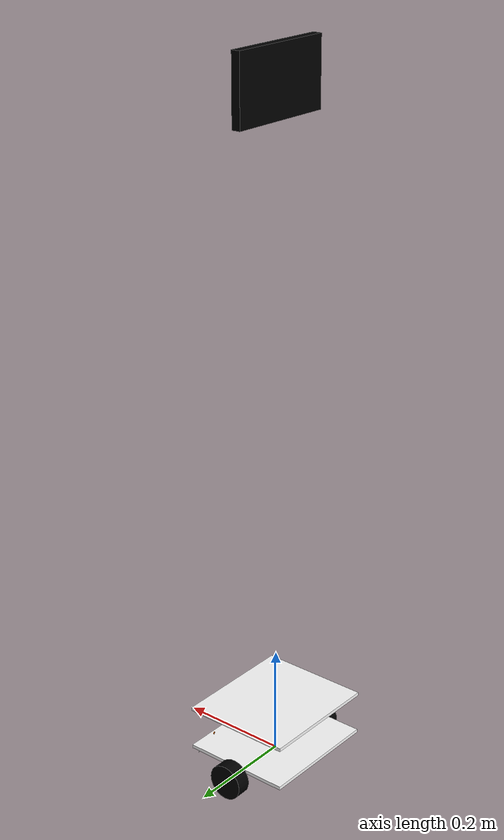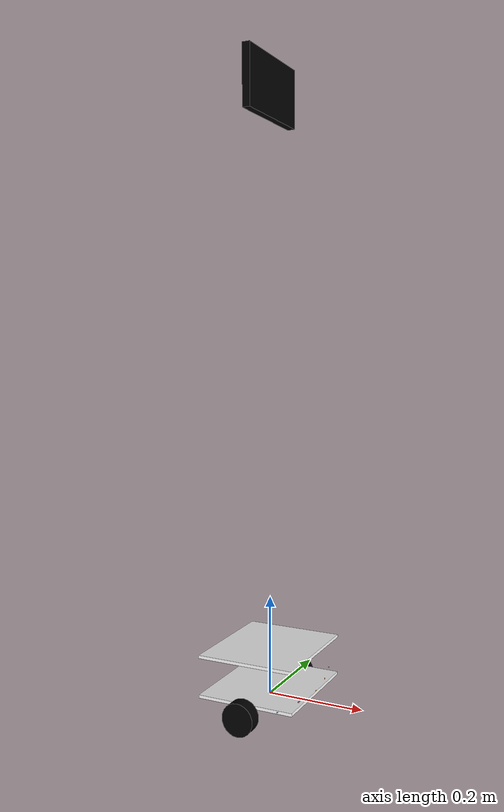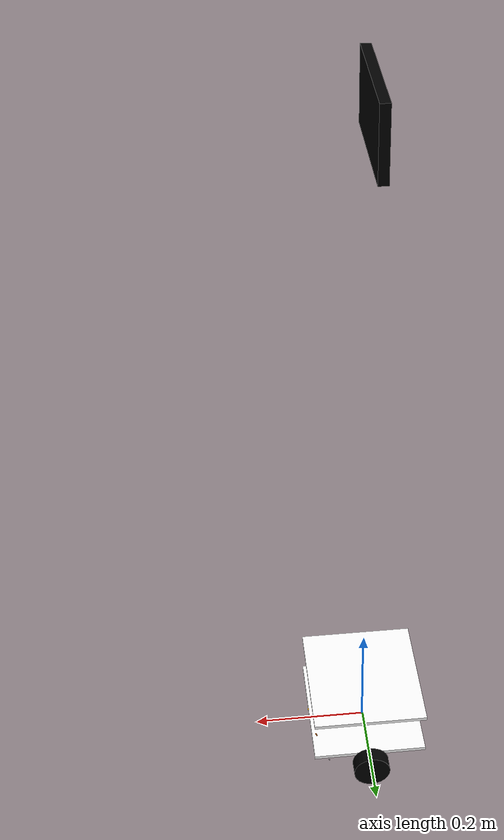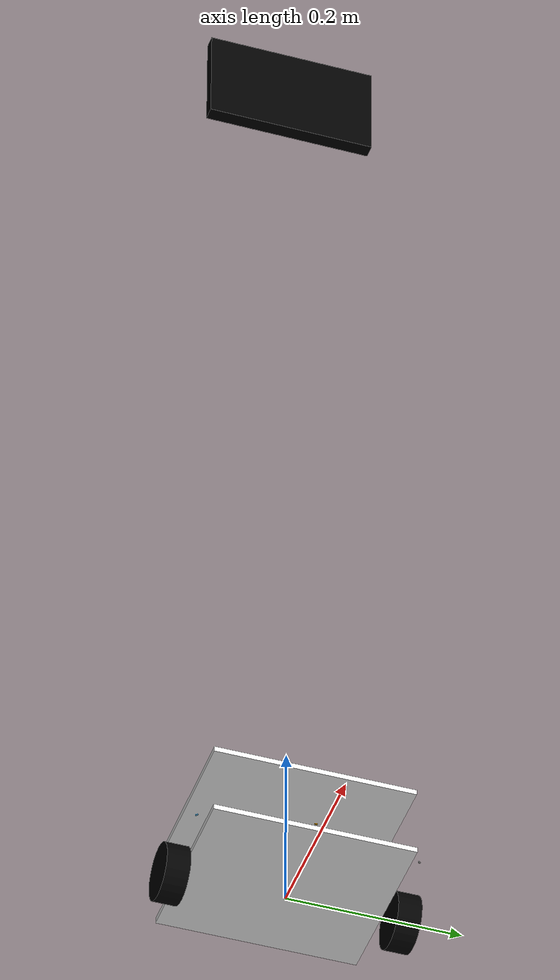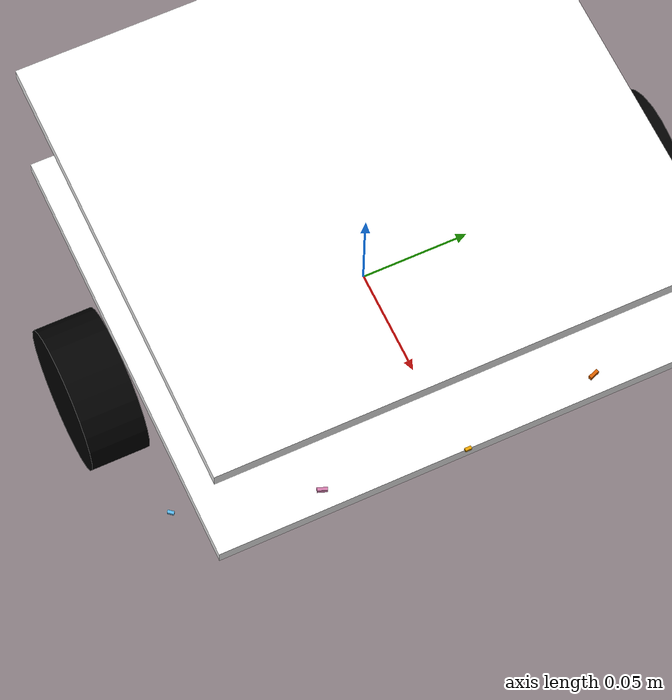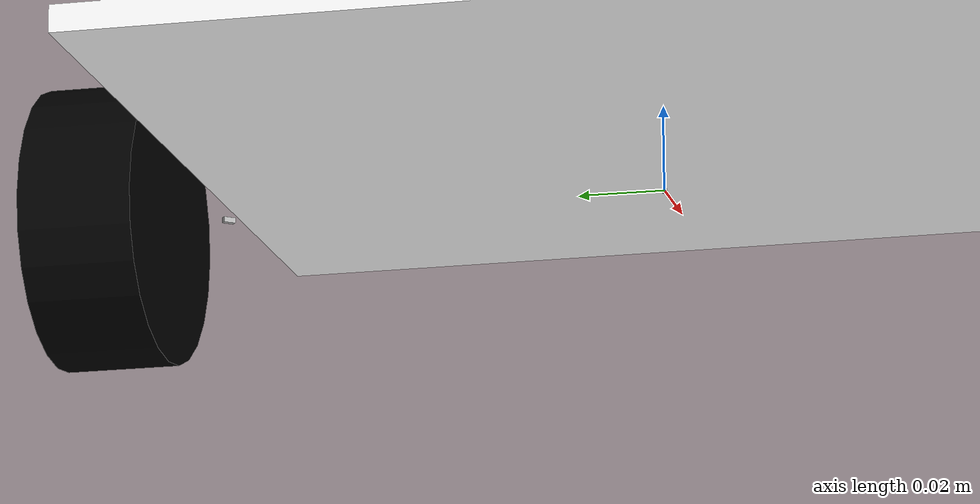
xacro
<?xml version="1.0"?>
<robot xmlns:xacro="http://www.ros.org/wiki/xacro" name="blah">
  <link name="base_link">
    <visual>
      <geometry>
        <box size="0.001 0.001 0.001"/>
      </geometry>
      <material name="black">
        <color rgba="0 0 0 1" />
      </material>
    </visual>
  </link>
  <xacro:include filename="mobile_base.xacro" />
  <xacro:include filename="head_unit.xacro" />
</robot>

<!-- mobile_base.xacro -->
<robot xmlns:xacro="http://www.ros.org/wiki/xacro" name="mobile_base">

  <xacro:property name="platform_l" value=".2032" />
  <xacro:property name="platform_w" value=".2286" />
  <xacro:property name="platform_h" value=".0064" />
  <xacro:property name="wheel_r" value=".0328" />
  <xacro:property name="wheel_l" value=".0267" />
  <xacro:property name="wheel_w_offset" value=".0025" />
  <xacro:property name="wheel_h_offset" value="-.015" />
  <xacro:property name="sensor_height" value="0.0050" />
  <xacro:property name="pi" value="3.14159265359" />

  <!-- fictitious center point between wheels for navigation -->
  <!-- Bot platforms -->
  <xacro:macro name="platform" params="pos">
    <link name="platform_${pos}">
      <visual>
        <geometry>
          <box size="${platform_l} ${platform_w} ${platform_h}"/>
        </geometry>
        <material name="white">
          <color rgba="1 1 1 1" />
        </material>
      </visual>
    </link>
  </xacro:macro>
  <xacro:platform pos="base" />
  <xacro:platform pos="upper" />
  <xacro:macro name="platform_joint" params="pos xyz">
    <joint name="platform_joint_${pos}" type="fixed">
      <parent link="base_link" />
      <child link="platform_${pos}" />
      <origin xyz="${xyz}" rpy="0 0 0" />
    </joint>
  </xacro:macro>
  <xacro:platform_joint pos="base" xyz="0 0 ${wheel_r + wheel_h_offset}" />
  <xacro:platform_joint pos="upper" xyz="0 0 ${wheel_r + wheel_h_offset + 0.08}" />

<!-- Differential Drive Wheels -->
  <xacro:macro name="wheel" params="pos rpy">
    <link name="wheel_${pos}">
      <visual>
        <geometry>
          <cylinder radius="${wheel_r}" length="${wheel_l}" />
        </geometry>
        <origin rpy="${rpy}" />
        <material name="black">
          <color rgba="0 0 0 1" />
        </material>
      </visual>
    </link>
  </xacro:macro>
  <xacro:wheel pos="right" rpy="${pi / 2} 0 0" />
  <xacro:wheel pos="left" rpy="${(pi / 2) * -1} 0 0" />
  <xacro:macro name="wheel_joint" params="pos xyz">
    <joint name="wheel_${pos}_joint" type="continuous">
      <parent link="base_link" />
      <child link="wheel_${pos}" />
      <axis xyz="0 1 0" />
      <origin rpy="0 0 0" xyz="${xyz}" />
    </joint>
  </xacro:macro>
  <xacro:wheel_joint pos="left" xyz="0 ${(platform_w / 2) + (wheel_l / 2) + wheel_w_offset} 0" />
  <xacro:wheel_joint pos="right" xyz="0 ${((platform_w / 2) + (wheel_l / 2) + wheel_w_offset) * -1} 0" />

  <!-- Sensor Array -->
  <xacro:macro name="sonar" params="pos">
    <link name="sonar_${pos}">
      <visual>
        <geometry>
          <box size=".0015 0.0046 0.0021"/>
        </geometry>
      </visual>
    </link>
  </xacro:macro>
  <xacro:sonar pos="left" />
  <xacro:sonar pos="right" />
  <xacro:macro name="ir" params="pos">
    <link name="ir_${pos}">
      <visual>
        <geometry>
          <box size=".0014 0.0030 0.0013"/>
        </geometry>
      </visual>
    </link>
  </xacro:macro>
  <xacro:ir pos="left" />
  <xacro:ir pos="center" />
  <xacro:ir pos="right" />
  <xacro:macro name="sensor_joint" params="sensor pos rpy xyz">
    <joint name="${sensor}_${pos}_joint" type="fixed">
      <parent link="platform_base" />
      <child link="${sensor}_${pos}" />
      <origin rpy="${rpy}" xyz="${xyz}" />
    </joint>
  </xacro:macro>
  <xacro:sensor_joint sensor="sonar" pos="left" rpy="0 0 0.35" xyz="${(platform_l / 2) - 0.008} 0.0635 ${sensor_height}" />
  <xacro:sensor_joint sensor="sonar" pos="right" rpy="0 0 -0.35" xyz="${(platform_l / 2) - 0.008} -0.0635 ${sensor_height}" />
  <xacro:sensor_joint sensor="ir" pos="left" rpy="0 0 0.7" xyz="${(platform_l / 2) - 0.025} 0.125 ${sensor_height}" />
  <xacro:sensor_joint sensor="ir" pos="center" rpy="0 0 0" xyz="${(platform_l / 2) + 0.0007} 0 ${sensor_height}" />
  <xacro:sensor_joint sensor="ir" pos="right" rpy="0 0 -0.7" xyz="${(platform_l / 2) - 0.025} -0.125 ${sensor_height}" />
  <xacro:macro name="sensor_depth_frame" params="sensor pos">
    <link name="${sensor}_${pos}_depth_frame">
      <inertial>
        <mass value="0.0001" />
        <origin xyz="0 0 0" />
        <inertia ixx="0.0001" ixy="0.0" ixz="0.0" iyy="0.0001" iyz="0.0" izz="0.0001" />
      </inertial>
    </link>
  </xacro:macro>
  <xacro:sensor_depth_frame sensor="sonar" pos="left" />
  <xacro:sensor_depth_frame sensor="sonar" pos="right" />
  <xacro:sensor_depth_frame sensor="ir" pos="left" />
  <xacro:sensor_depth_frame sensor="ir" pos="center" />
  <xacro:sensor_depth_frame sensor="ir" pos="right" />
  <xacro:macro name="sensor_depth_frame_joint" params="sensor pos">
    <joint name="${sensor}_${pos}_depth_joint" type="fixed">
      <origin xyz="0 0.015 0" rpy="0 0 0" />
      <parent link="${sensor}_${pos}" />
      <child link="${sensor}_${pos}_depth_frame" />
    </joint>
  </xacro:macro>
  <xacro:sensor_depth_frame_joint sensor="sonar" pos="left" />
  <xacro:sensor_depth_frame_joint sensor="sonar" pos="right" />
  <xacro:sensor_depth_frame_joint sensor="ir" pos="left" />
  <xacro:sensor_depth_frame_joint sensor="ir" pos="center" />
  <xacro:sensor_depth_frame_joint sensor="ir" pos="right" />

</robot>

  <!-- Stereo Camera -->

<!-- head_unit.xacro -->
<robot xmlns:xacro="http://www.ros.org/wiki/xacro" name="head_unit">

  <xacro:property name="pi" value="3.14159265359" />

  <link name="head_unit">
    <visual>
      <geometry>
        <box size="0.0160528 0.1992376 0.119888"/>
      </geometry>
      <material name="black">
        <color rgba="0 0 0 1" />
      </material>
    </visual>
  </link>

  <joint name="base_link_to_head_unit" type="fixed">
    <parent link="base_link" />
    <child link="head_unit" />
    <origin xyz="0 0 1.2192" rpy="0 0 0" />
  </joint>

  <!-- Bot platforms -->

</robot>
